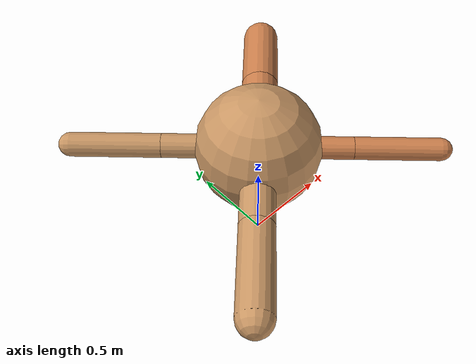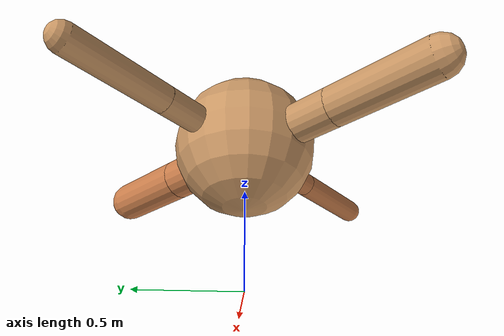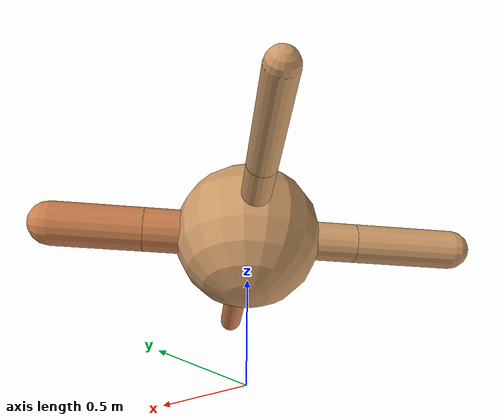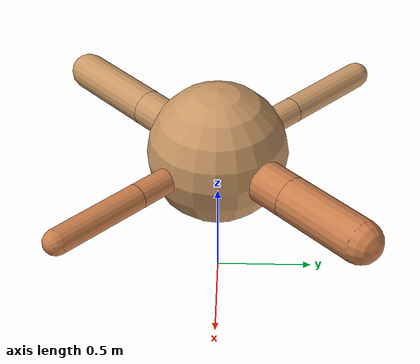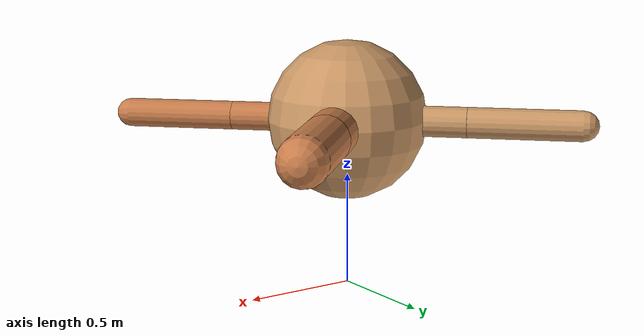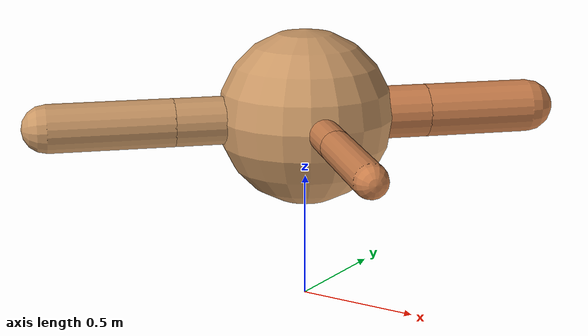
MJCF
<?xml version="1.0" ?>
<mujoco model="ant">

	<compiler angle="degree" coordinate="local" inertiafromgeom="true"/>

	<option integrator="RK4" timestep="0.01"/>

	<custom>

		<numeric data="0.0 0.0 0.55 1.0 0.0 0.0 0.0 0.0 1.0 0.0 -1.0 0.0 -1.0 0.0 1.0" name="init_qpos"/>

	</custom>

	<default>

		<joint armature="1" damping="1" limited="true"/>

		<geom conaffinity="0" condim="3" density="5.0" friction="1.5 0.1 0.1" margin="0.01" rgba="0.8 0.6 0.4 1"/>

	</default>

	<worldbody>

		<body name="torso" pos="0 0 0.75">

			<geom name="torso_geom" pos="0 0 0" size="0.35381716399715174" type="sphere"/>

			<!--joint armature="0" damping="0" limited="false" margin="0.01" name="root" pos="0 0 0" type="free"/-->

			<body name="front_left_leg" pos="0 0 0">

				<geom fromto="0 0 0 0.2 0.2 0" name="aux_1_geom" size="0.10734746929260154" type="capsule" rgba=".8 .5 .3 1"/>

				<body name="aux_1" pos="0.2 0.2 0">

					<joint axis="0 0 1" name="hip_1" pos="0.0 0.0 0.0" range="-40 40" type="hinge"/>

					<geom fromto="0 0 0 0.1544774565600626 0.1544774565600626 0" name="left_leg_geom" size="0.10734746929260154" type="capsule" rgba=".8 .5 .3 1"/>

					<body pos="0.1544774565600626 0.1544774565600626 0" name="front_left_foot">

						<joint axis="-1 1 0" name="ankle_1" pos="0.0 0.0 0.0" range="30 100" type="hinge"/>

						<geom fromto="0 0 0 0.3089549131201252 0.3089549131201252 0" name="left_ankle_geom" size="0.10734746929260154" type="capsule" rgba=".8 .5 .3 1"/>

					</body>

				</body>

			</body>

			<body name="front_right_leg" pos="0 0 0">

				<geom fromto="0 0 0 -0.2 0.2 0" name="aux_2_geom" size="0.06768181438448428" type="capsule"/>

				<body name="aux_2" pos="-0.2 0.2 0">

					<joint axis="0 0 1" name="hip_2" pos="0.0 0.0 0.0" range="-40 40" type="hinge"/>

					<geom fromto="0 0 0 -0.17774613215880797 0.17774613215880797 0" name="right_leg_geom" size="0.06768181438448428" type="capsule"/>

					<body pos="-0.17774613215880797 0.17774613215880797 0" name="front_right_foot">

						<joint axis="1 1 0" name="ankle_2" pos="0.0 0.0 0.0" range="-100 -30" type="hinge"/>

						<geom fromto="0 0 0 -0.35549226431761594 0.35549226431761594 0" name="right_ankle_geom" size="0.06768181438448428" type="capsule"/>

					</body>

				</body>

			</body>

			<body name="left_back_leg" pos="0 0 0">

				<geom fromto="0 0 0 -0.2 -0.2 0" name="aux_3_geom" size="0.09643363468929227" type="capsule"/>

				<body name="aux_3" pos="-0.2 -0.2 0">

					<joint axis="0 0 1" name="hip_3" pos="0.0 0.0 0.0" range="-40 40" type="hinge"/>

					<geom fromto="0 0 0 -0.17637426481400853 -0.17637426481400853 0" name="back_leg_geom" size="0.09643363468929227" type="capsule"/>

					<body pos="-0.17637426481400853 -0.17637426481400853 0" name="left_back_foot">

						<joint axis="-1 1 0" name="ankle_3" pos="0.0 0.0 0.0" range="-100 -30" type="hinge"/>

						<geom fromto="0 0 0 -0.35274852962801706 -0.35274852962801706 0" name="third_ankle_geom" size="0.09643363468929227" type="capsule"/>

					</body>

				</body>

			</body>

			<body name="right_back_leg" pos="0 0 0">

				<geom fromto="0 0 0 0.2 -0.2 0" name="aux_4_geom" size="0.06342254616274971" type="capsule" rgba=".8 .5 .3 1"/>

				<body name="aux_4" pos="0.2 -0.2 0">

					<joint axis="0 0 1" name="hip_4" pos="0.0 0.0 0.0" range="-40 40" type="hinge"/>

					<geom fromto="0 0 0 0.16875394070592922 -0.16875394070592922 0" name="rightback_leg_geom" size="0.06342254616274971" type="capsule" rgba=".8 .5 .3 1"/>

					<body pos="0.16875394070592922 -0.16875394070592922 0" name="right_back_foot">

						<joint axis="1 1 0" name="ankle_4" pos="0.0 0.0 0.0" range="30 100" type="hinge"/>

						<geom fromto="0 0 0 0.33750788141185845 -0.33750788141185845 0" name="fourth_ankle_geom" size="0.06342254616274971" type="capsule" rgba=".8 .5 .3 1"/>

					</body>

				</body>

			</body>

		</body>

	</worldbody>

	<actuator>

		<motor ctrllimited="true" ctrlrange="-1.0 1.0" joint="hip_4" gear="150"/>

		<motor ctrllimited="true" ctrlrange="-1.0 1.0" joint="ankle_4" gear="150"/>

		<motor ctrllimited="true" ctrlrange="-1.0 1.0" joint="hip_1" gear="150"/>

		<motor ctrllimited="true" ctrlrange="-1.0 1.0" joint="ankle_1" gear="150"/>

		<motor ctrllimited="true" ctrlrange="-1.0 1.0" joint="hip_2" gear="150"/>

		<motor ctrllimited="true" ctrlrange="-1.0 1.0" joint="ankle_2" gear="150"/>

		<motor ctrllimited="true" ctrlrange="-1.0 1.0" joint="hip_3" gear="150"/>

		<motor ctrllimited="true" ctrlrange="-1.0 1.0" joint="ankle_3" gear="150"/>

	</actuator>

</mujoco>
